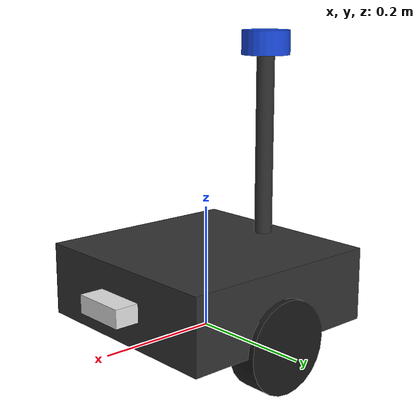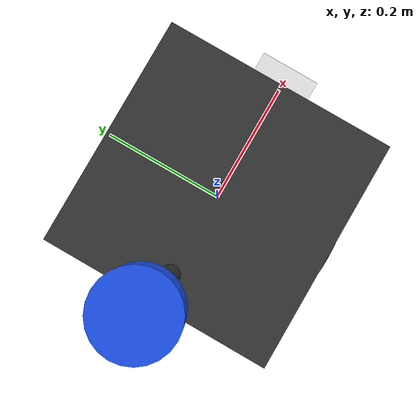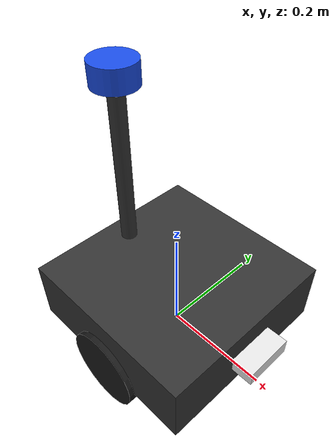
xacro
<?xml version="1.0"?>
<robot name="pedro_rescue" xmlns:xacro="http://www.ros.org/wiki/xacro">

  <!-- ══════════════════════════════════════════════
       Pedro's Rescue Robot — URDF/Xacro
       Differential drive · LDRobot LD19 · Orbbec RGB-D
       ══════════════════════════════════════════════ -->

  <!-- ── Propiedades físicas ── -->
  <xacro:property name="base_length"      value="0.35"/>   <!-- largo cuerpo [m] -->
  <xacro:property name="base_width"       value="0.35"/>   <!-- ancho cuerpo [m] -->
  <xacro:property name="base_height"      value="0.12"/>   <!-- alto cuerpo [m] -->
  <xacro:property name="base_mass"        value="5.0"/>    <!-- kg -->

  <xacro:property name="wheel_radius"     value="0.075"/>  <!-- radio rueda [m] -->
  <xacro:property name="wheel_width"      value="0.05"/>   <!-- ancho rueda [m] -->
  <xacro:property name="wheel_sep"        value="0.32"/>   <!-- separación entre ruedas [m] -->
  <xacro:property name="wheel_mass"       value="0.5"/>    <!-- kg -->

  <xacro:property name="lidar_radius"     value="0.04"/>   <!-- radio cilindro lidar [m] -->
  <xacro:property name="lidar_height"     value="0.04"/>   <!-- alto lidar [m] -->
  <xacro:property name="tower_height"     value="0.30"/>   <!-- altura torre trasera [m] -->
  <xacro:property name="lidar_x_offset"   value="-0.13"/>  <!-- LiDAR en parte trasera del robot [m] -->

  <!-- ── Materiales ── -->
  <material name="dark_gray"><color rgba="0.2 0.2 0.2 1.0"/></material>
  <material name="black">    <color rgba="0.1 0.1 0.1 1.0"/></material>
  <material name="blue">     <color rgba="0.1 0.3 0.9 1.0"/></material>
  <material name="white">    <color rgba="0.9 0.9 0.9 1.0"/></material>

  <!-- ══════════════════════════════════════════════
       BASE FOOTPRINT — referencia virtual en el suelo
       ══════════════════════════════════════════════ -->
  <link name="base_footprint"/>

  <joint name="base_footprint_to_base_link" type="fixed">
    <parent link="base_footprint"/>
    <child  link="base_link"/>
    <origin xyz="0 0 ${wheel_radius}" rpy="0 0 0"/>
  </joint>

  <!-- ══════════════════════════════════════════════
       BASE LINK — cuerpo principal del robot
       ══════════════════════════════════════════════ -->
  <link name="base_link">
    <visual>
      <origin xyz="0 0 0" rpy="0 0 0"/>
      <geometry>
        <box size="${base_length} ${base_width} ${base_height}"/>
      </geometry>
      <material name="dark_gray"/>
    </visual>
    <collision>
      <origin xyz="0 0 0" rpy="0 0 0"/>
      <geometry>
        <box size="${base_length} ${base_width} ${base_height}"/>
      </geometry>
    </collision>
    <inertial>
      <mass value="${base_mass}"/>
      <inertia
        ixx="${base_mass*(base_width*base_width + base_height*base_height)/12}"
        ixy="0" ixz="0"
        iyy="${base_mass*(base_length*base_length + base_height*base_height)/12}"
        iyz="0"
        izz="${base_mass*(base_length*base_length + base_width*base_width)/12}"/>
    </inertial>
  </link>

  <!-- ══════════════════════════════════════════════
       MACRO — rueda genérica
       ══════════════════════════════════════════════ -->
  <xacro:macro name="wheel" params="name y_offset">
    <link name="${name}_wheel">
      <visual>
        <origin xyz="0 0 0" rpy="${pi/2} 0 0"/>
        <geometry>
          <cylinder radius="${wheel_radius}" length="${wheel_width}"/>
        </geometry>
        <material name="black"/>
      </visual>
      <collision>
        <origin xyz="0 0 0" rpy="${pi/2} 0 0"/>
        <geometry>
          <cylinder radius="${wheel_radius}" length="${wheel_width}"/>
        </geometry>
      </collision>
      <inertial>
        <mass value="${wheel_mass}"/>
        <inertia
          ixx="${wheel_mass*(3*wheel_radius*wheel_radius + wheel_width*wheel_width)/12}"
          ixy="0" ixz="0"
          iyy="${wheel_mass*(3*wheel_radius*wheel_radius + wheel_width*wheel_width)/12}"
          iyz="0"
          izz="${wheel_mass*wheel_radius*wheel_radius/2}"/>
      </inertial>
    </link>

    <joint name="${name}_wheel_joint" type="continuous">
      <parent link="base_link"/>
      <child  link="${name}_wheel"/>
      <origin xyz="0 ${y_offset} ${-base_height/2}" rpy="0 0 0"/>
      <axis xyz="0 1 0"/>
      <dynamics damping="0.01" friction="0.1"/>
    </joint>
  </xacro:macro>

  <xacro:wheel name="left"  y_offset="${ wheel_sep/2}"/>
  <xacro:wheel name="right" y_offset="${-wheel_sep/2}"/>

  <!-- ══════════════════════════════════════════════
       LIDAR — LDRobot LD19
       frame_id debe coincidir con ldlidar.yaml → 'ldlidar_link'
       ══════════════════════════════════════════════ -->
  <link name="ldlidar_link">
    <visual>
      <origin xyz="0 0 0" rpy="0 0 0"/>
      <geometry>
        <cylinder radius="${lidar_radius}" length="${lidar_height}"/>
      </geometry>
      <material name="blue"/>
    </visual>
    <collision>
      <geometry>
        <cylinder radius="${lidar_radius}" length="${lidar_height}"/>
      </geometry>
    </collision>
    <inertial>
      <mass value="0.15"/>
      <inertia ixx="0.0001" ixy="0" ixz="0" iyy="0.0001" iyz="0" izz="0.0001"/>
    </inertial>
  </link>

  <!-- torre visual debajo del lidar -->
  <link name="lidar_tower_link">
    <visual>
      <origin xyz="0 0 0" rpy="0 0 0"/>
      <geometry>
        <cylinder radius="0.015" length="${tower_height}"/>
      </geometry>
      <material name="dark_gray"/>
    </visual>
    <inertial>
      <mass value="0.05"/>
      <inertia ixx="0.0001" ixy="0" ixz="0" iyy="0.0001" iyz="0" izz="0.0001"/>
    </inertial>
  </link>

  <joint name="lidar_tower_joint" type="fixed">
    <parent link="base_link"/>
    <child  link="lidar_tower_link"/>
    <!-- torre en la cara trasera, sobre la superficie superior del cuerpo -->
    <origin xyz="${lidar_x_offset} 0 ${base_height/2 + tower_height/2}" rpy="0 0 0"/>
  </joint>

  <joint name="ldlidar_joint" type="fixed">
    <parent link="lidar_tower_link"/>
    <child  link="ldlidar_link"/>
    <!-- LiDAR en el tope de la torre -->
    <origin xyz="0 0 ${tower_height/2 + lidar_height/2}" rpy="0 0 ${pi}"/>
  </joint>
  <!-- rpy="0 0 pi": el conector USB del LD19 apunta hacia el frente,
       rotarlo 180° pone el eje de escaneo correctamente alineado con base_footprint -->

  <!-- ══════════════════════════════════════════════
       CÁMARA — Orbbec (RGB-D)
       Montada en la parte delantera, inclinada hacia abajo 15°
       ══════════════════════════════════════════════ -->
  <link name="camera_link">
    <visual>
      <origin xyz="0 0 0" rpy="0 0 0"/>
      <geometry>
        <box size="0.04 0.09 0.03"/>
      </geometry>
      <material name="white"/>
    </visual>
    <inertial>
      <mass value="0.2"/>
      <inertia ixx="0.0001" ixy="0" ixz="0" iyy="0.0001" iyz="0" izz="0.0001"/>
    </inertial>
  </link>

  <joint name="camera_joint" type="fixed">
    <parent link="base_link"/>
    <child  link="camera_link"/>
    <!-- Montada en la cara frontal, centrada verticalmente, mirando hacia adelante -->
    <origin xyz="${base_length/2 + 0.02} 0 0" rpy="0 0 0"/>
  </joint>

  <!-- optical frame (convención ROS: x=right, y=down, z=forward) -->
  <link name="camera_optical_link"/>
  <joint name="camera_optical_joint" type="fixed">
    <parent link="camera_link"/>
    <child  link="camera_optical_link"/>
    <origin xyz="0 0 0" rpy="${-pi/2} 0 ${-pi/2}"/>
  </joint>

</robot>
